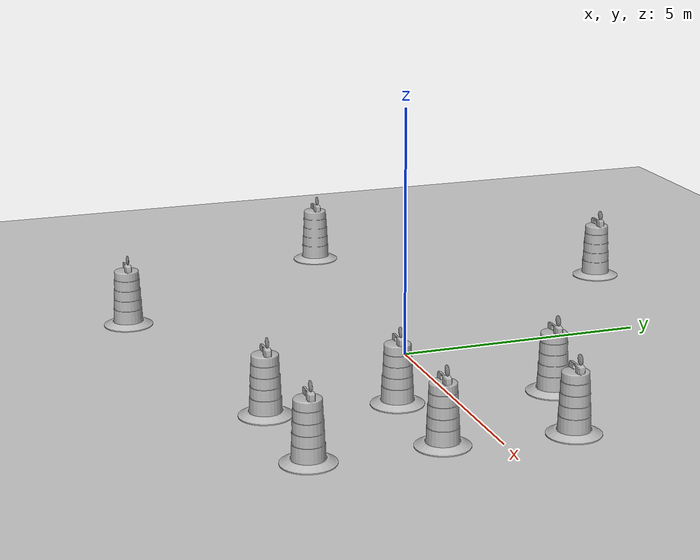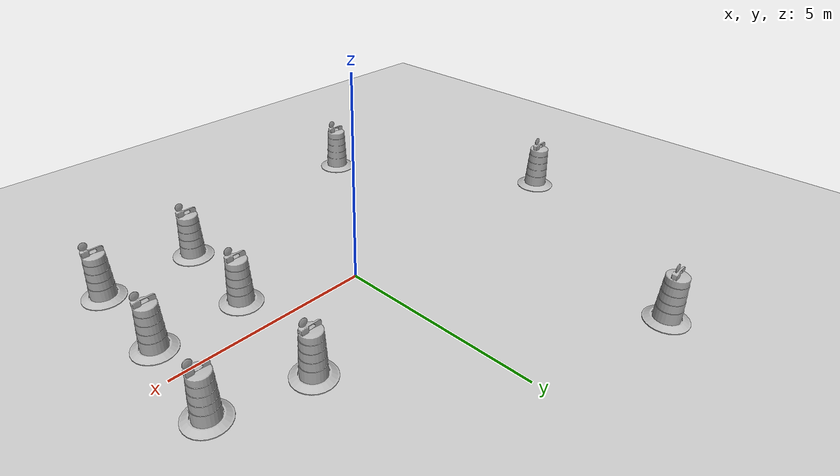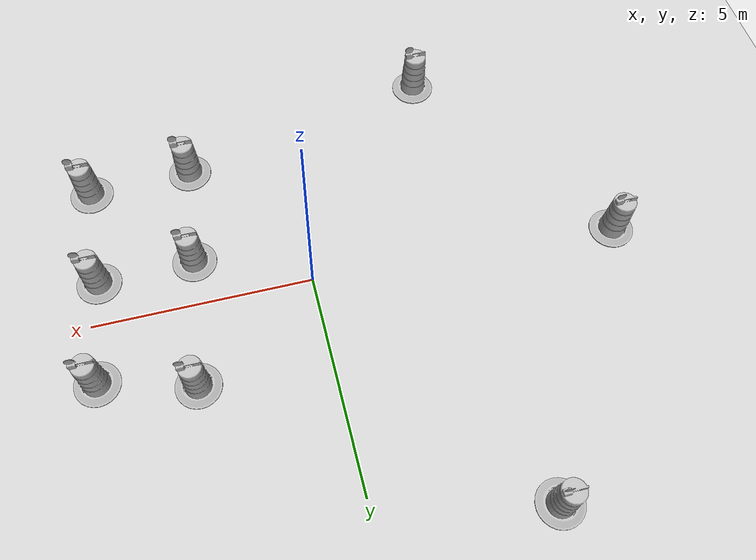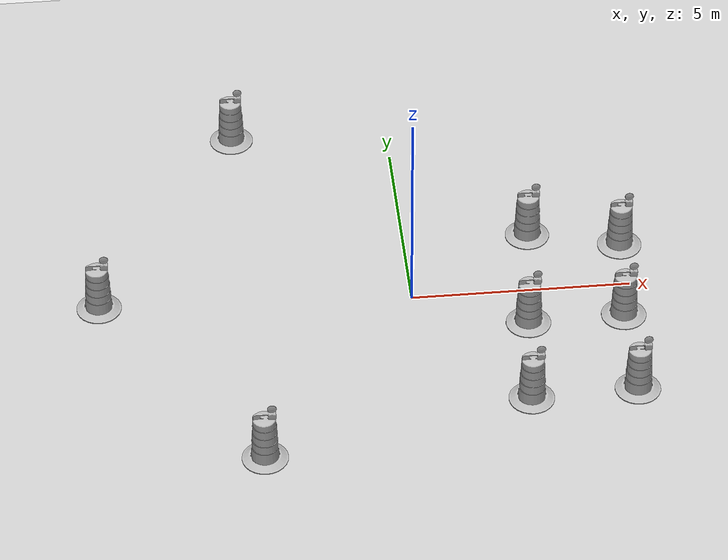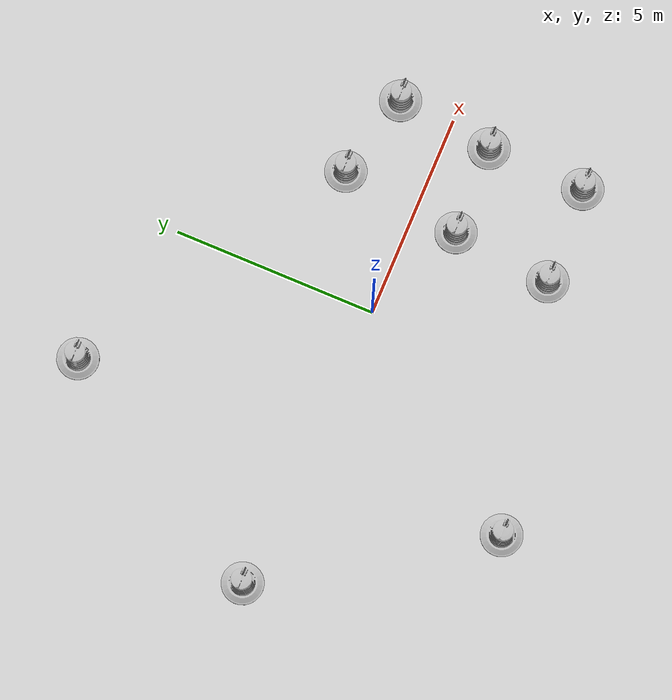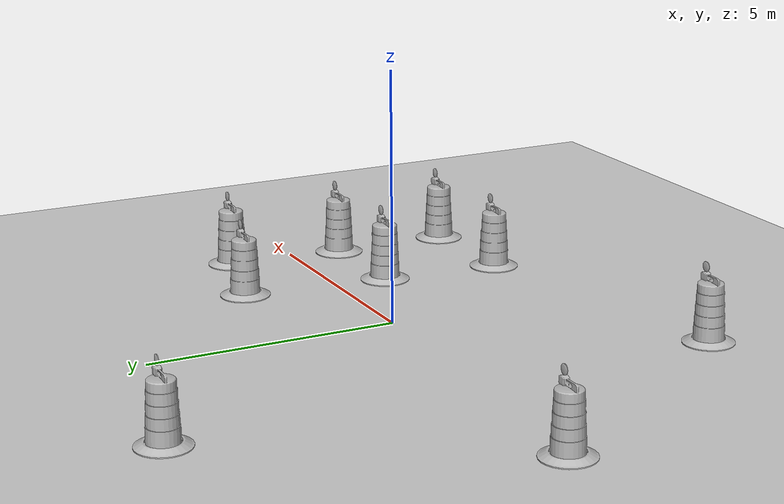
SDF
<sdf version="1.7">
 <world name="default">
  <light name="sun" type="directional">
   <pose>0 0 10 0 -0 0</pose>
   <diffuse>0.8 0.8 0.8 1</diffuse>
   <specular>0.2 0.2 0.2 1</specular>
   <attenuation>
    <range>1000</range>
    <constant>0.9</constant>
    <linear>0.01</linear>
    <quadratic>0.001</quadratic>
   </attenuation>
   <direction>-0.5 0.1 -0.9</direction>
   <spot><inner_angle>0</inner_angle><outer_angle>0</outer_angle><falloff>0</falloff></spot>
  </light>
  <model name="ground_plane">
   <static>1</static>
   <link name="link">
    <collision name="collision">
     <geometry><plane><normal>0 0 1</normal><size>100 100</size></plane></geometry>
     <surface>
      <contact><collide_bitmask>65535</collide_bitmask></contact>
      <friction><ode><mu>100</mu><mu2>50</mu2></ode></friction>
     </surface>
    </collision>
    <visual name="visual">
     <cast_shadows>0</cast_shadows>
     <geometry><plane><normal>0 0 1</normal><size>100 100</size></plane></geometry>
     <material>
      <script><uri>file://media/materials/scripts/gazebo.material</uri><name>Gazebo/Grey</name></script>
     </material>
    </visual>
   </link>
  </model>
  <gravity>0 0 -9.8</gravity>
  <magnetic_field>6e-06 2.3e-05 -4.2e-05</magnetic_field>
  <atmosphere type="adiabatic"/>
  <physics type="ode">
   <max_step_size>0.001</max_step_size>
   <real_time_factor>1</real_time_factor>
   <real_time_update_rate>1000</real_time_update_rate>
  </physics>
  <scene><ambient>0.4 0.4 0.4 1</ambient><background>0.7 0.7 0.7 1</background><shadows>1</shadows></scene>
  <audio><device>default</device></audio>
  <spherical_coordinates>
   <surface_model>EARTH_WGS84</surface_model>
   <latitude_deg>0</latitude_deg>
   <longitude_deg>0</longitude_deg>
   <elevation>0</elevation>
   <heading_deg>0</heading_deg>
  </spherical_coordinates>
  <model name="Construction Barrel">
   <link name="link">
    <inertial>
     <pose>0 0 0.4 0 -0 0</pose>
     <mass>500</mass>
     <inertia><ixx>51.2096</ixx><iyy>51.2096</iyy><izz>25</izz><ixy>0</ixy><ixz>0</ixz><iyz>0</iyz></inertia>
    </inertial>
    <collision name="collision">
     <geometry><mesh><uri>model://construction_barrel/meshes/construction_barrel.dae</uri></mesh></geometry>
    </collision>
    <visual name="visual">
     <geometry><mesh><uri>model://construction_barrel/meshes/construction_barrel.dae</uri></mesh></geometry>
    </visual>
   </link>
   <pose>2.28754 -3.53222 -0 0 0 -1.8e-05</pose>
  </model>
  <model name="Construction Barrel_0">
   <link name="link">
    <inertial>
     <pose>0 0 0.4 0 -0 0</pose>
     <mass>500</mass>
     <inertia><ixx>51.2096</ixx><iyy>51.2096</iyy><izz>25</izz><ixy>0</ixy><ixz>0</ixz><iyz>0</iyz></inertia>
    </inertial>
    <collision name="collision">
     <geometry><mesh><uri>model://construction_barrel/meshes/construction_barrel.dae</uri></mesh></geometry>
    </collision>
    <visual name="visual">
     <geometry><mesh><uri>model://construction_barrel/meshes/construction_barrel.dae</uri></mesh></geometry>
    </visual>
   </link>
   <pose>2.53501 -1.08251 -1e-06 3e-06 -0 -1.5e-05</pose>
  </model>
  <model name="Construction Barrel_1">
   <link name="link">
    <inertial>
     <pose>0 0 0.4 0 -0 0</pose>
     <mass>500</mass>
     <inertia><ixx>51.2096</ixx><iyy>51.2096</iyy><izz>25</izz><ixy>0</ixy><ixz>0</ixz><iyz>0</iyz></inertia>
    </inertial>
    <collision name="collision">
     <geometry><mesh><uri>model://construction_barrel/meshes/construction_barrel.dae</uri></mesh></geometry>
    </collision>
    <visual name="visual">
     <geometry><mesh><uri>model://construction_barrel/meshes/construction_barrel.dae</uri></mesh></geometry>
    </visual>
   </link>
   <pose>2.88929 1.89247 -0 1e-06 -1e-06 -1.5e-05</pose>
  </model>
  <model name="Construction Barrel_2">
   <link name="link">
    <inertial>
     <pose>0 0 0.4 0 -0 0</pose>
     <mass>500</mass>
     <inertia><ixx>51.2096</ixx><iyy>51.2096</iyy><izz>25</izz><ixy>0</ixy><ixz>0</ixz><iyz>0</iyz></inertia>
    </inertial>
    <collision name="collision">
     <geometry><mesh><uri>model://construction_barrel/meshes/construction_barrel.dae</uri></mesh></geometry>
    </collision>
    <visual name="visual">
     <geometry><mesh><uri>model://construction_barrel/meshes/construction_barrel.dae</uri></mesh></geometry>
    </visual>
   </link>
   <pose>4.66267 -3.45493 -2e-06 4e-06 9e-06 -1.2e-05</pose>
  </model>
  <model name="Construction Barrel_3">
   <link name="link">
    <inertial>
     <pose>0 0 0.4 0 -0 0</pose>
     <mass>500</mass>
     <inertia><ixx>51.2096</ixx><iyy>51.2096</iyy><izz>25</izz><ixy>0</ixy><ixz>0</ixz><iyz>0</iyz></inertia>
    </inertial>
    <collision name="collision">
     <geometry><mesh><uri>model://construction_barrel/meshes/construction_barrel.dae</uri></mesh></geometry>
    </collision>
    <visual name="visual">
     <geometry><mesh><uri>model://construction_barrel/meshes/construction_barrel.dae</uri></mesh></geometry>
    </visual>
   </link>
   <pose>4.71166 -1.03155 0 0 0 -1e-05</pose>
  </model>
  <model name="Construction Barrel_4">
   <link name="link">
    <inertial>
     <pose>0 0 0.4 0 -0 0</pose>
     <mass>500</mass>
     <inertia><ixx>51.2096</ixx><iyy>51.2096</iyy><izz>25</izz><ixy>0</ixy><ixz>0</ixz><iyz>0</iyz></inertia>
    </inertial>
    <collision name="collision">
     <geometry><mesh><uri>model://construction_barrel/meshes/construction_barrel.dae</uri></mesh></geometry>
    </collision>
    <visual name="visual">
     <geometry><mesh><uri>model://construction_barrel/meshes/construction_barrel.dae</uri></mesh></geometry>
    </visual>
   </link>
   <pose>4.96942 1.35199 -1e-06 2e-06 -1e-06 -9e-06</pose>
  </model>
  <model name="Construction Barrel_5">
   <link name="link">
    <inertial>
     <pose>0 0 0.4 0 -0 0</pose>
     <mass>500</mass>
     <inertia><ixx>51.2096</ixx><iyy>51.2096</iyy><izz>25</izz><ixy>0</ixy><ixz>0</ixz><iyz>0</iyz></inertia>
    </inertial>
    <collision name="collision">
     <geometry><mesh><uri>model://construction_barrel/meshes/construction_barrel.dae</uri></mesh></geometry>
    </collision>
    <visual name="visual">
     <geometry><mesh><uri>model://construction_barrel/meshes/construction_barrel.dae</uri></mesh></geometry>
    </visual>
   </link>
   <pose>-7.08124 0.335002 -3e-06 6e-06 1.1e-05 -9e-06</pose>
  </model>
  <model name="Construction Barrel_6">
   <link name="link">
    <inertial>
     <pose>0 0 0.4 0 -0 0</pose>
     <mass>500</mass>
     <inertia><ixx>51.2096</ixx><iyy>51.2096</iyy><izz>25</izz><ixy>0</ixy><ixz>0</ixz><iyz>0</iyz></inertia>
    </inertial>
    <collision name="collision">
     <geometry><mesh><uri>model://construction_barrel/meshes/construction_barrel.dae</uri></mesh></geometry>
    </collision>
    <visual name="visual">
     <geometry><mesh><uri>model://construction_barrel/meshes/construction_barrel.dae</uri></mesh></geometry>
    </visual>
   </link>
   <pose>-3.69784 -4.82078 1e-06 4e-06 2e-06 -7e-06</pose>
  </model>
  <model name="Construction Barrel_7">
   <link name="link">
    <inertial>
     <pose>0 0 0.4 0 -0 0</pose>
     <mass>500</mass>
     <inertia><ixx>51.2096</ixx><iyy>51.2096</iyy><izz>25</izz><ixy>0</ixy><ixz>0</ixz><iyz>0</iyz></inertia>
    </inertial>
    <collision name="collision">
     <geometry><mesh><uri>model://construction_barrel/meshes/construction_barrel.dae</uri></mesh></geometry>
    </collision>
    <visual name="visual">
     <geometry><mesh><uri>model://construction_barrel/meshes/construction_barrel.dae</uri></mesh></geometry>
    </visual>
   </link>
   <pose>-3.6915 5.98219 -2e-06 1e-06 8e-06 -4e-06</pose>
  </model>
 </world>
</sdf>
